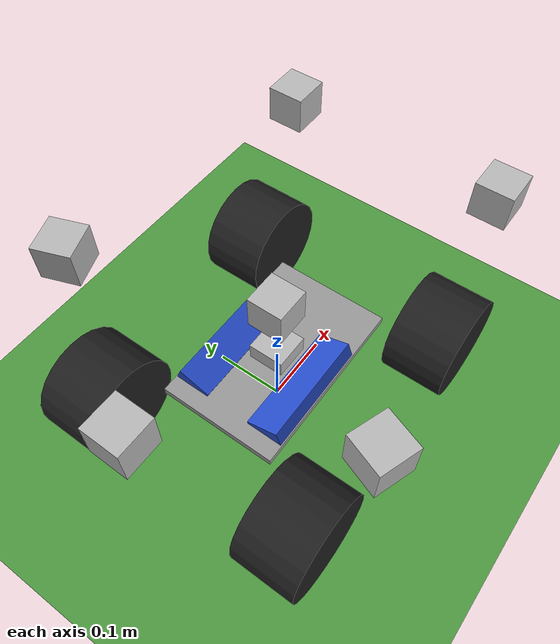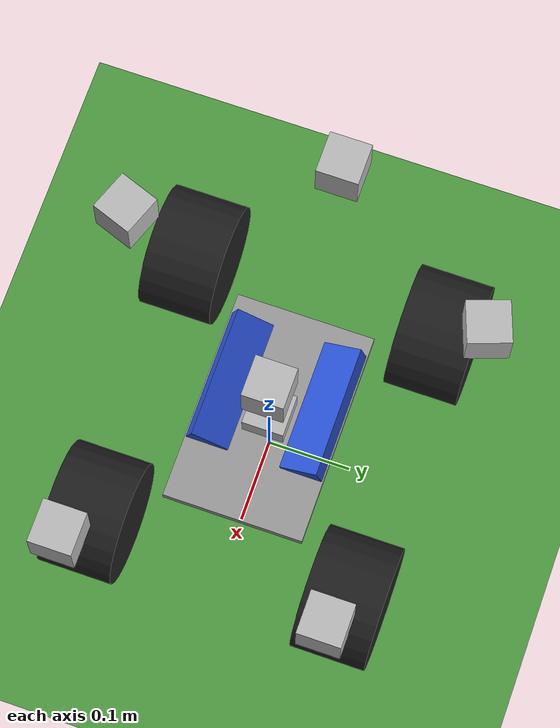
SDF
<sdf version="1.6">
 <world name="racecar_tunnel">
  <light name="sun" type="directional">
   <pose>0 0 10 0 -0 0</pose>
   <diffuse>0.8 0.8 0.8 1</diffuse>
   <specular>0.1 0.1 0.1 1</specular>
   <attenuation>
    <range>1000</range>
    <constant>0.9</constant>
    <linear>0.01</linear>
    <quadratic>0.001</quadratic>
   </attenuation>
   <direction>-0.5 0.5 -1</direction>
  </light>
  <model name="ground_plane">
   <static>1</static>
   <link name="link">
    <collision name="collision">
     <geometry><plane><normal>0 0 1</normal><size>150 150</size></plane></geometry>
     <surface><friction><ode><mu>100</mu><mu2>50</mu2></ode></friction></surface>
    </collision>
    <visual name="visual">
     <cast_shadows>0</cast_shadows>
     <geometry><plane><normal>0 0 1</normal><size>150 150</size></plane></geometry>
     <material>
      <script><uri>file://media/materials/scripts/gazebo.material</uri><name>Gazebo/Grass</name></script>
     </material>
    </visual>
   </link>
  </model>
  <gravity>0 0 -9.8</gravity>
  <magnetic_field>6e-06 2.3e-05 -4.2e-05</magnetic_field>
  <atmosphere type="adiabatic"/>
  <physics name="default_physics" default="0" type="ode">
   <max_step_size>0.001</max_step_size>
   <real_time_factor>1</real_time_factor>
   <real_time_update_rate>1000</real_time_update_rate>
  </physics>
  <scene><ambient>0.4 0.4 0.4 1</ambient><background>0.7 0.7 0.7 1</background><shadows>1</shadows></scene>
  <spherical_coordinates>
   <surface_model>EARTH_WGS84</surface_model>
   <latitude_deg>0</latitude_deg>
   <longitude_deg>0</longitude_deg>
   <elevation>0</elevation>
   <heading_deg>0</heading_deg>
  </spherical_coordinates>
  <model name="roguetwo">
   <link name="base_link">
    <inertial>
     <pose>-0.006291 -0 -0.000667 0 -0 0</pose>
     <mass>4</mass>
     <inertia>
      <ixx>0.0134338</ixx>
      <ixy>1.70525e-22</ixy>
      <ixz>2.8345e-05</ixz>
      <iyy>0.0215666</iyy>
      <iyz>1.80755e-23</iyz>
      <izz>0.0304621</izz>
     </inertia>
    </inertial>
    <collision name="base_link_fixed_joint_lump__chassis_collision">
     <pose>0 0 -0.005 0 -0 0</pose>
     <geometry><box><size>0.258 0.168 0.01</size></box></geometry>
    </collision>
    <collision name="base_link_fixed_joint_lump__left_battery_collision_1">
     <pose>-0.025 0.057319 0.00052 0.349066 -0 0</pose>
     <geometry><box><size>0.16 0.047 0.024</size></box></geometry>
    </collision>
    <collision name="base_link_fixed_joint_lump__right_battery_collision_2">
     <pose>-0.025 -0.057319 0.00052 -0.349066 0 0</pose>
     <geometry><box><size>0.16 0.047 0.024</size></box></geometry>
    </collision>
    <collision name="base_link_fixed_joint_lump__gps_collision_3">
     <pose>0 0 0.1 0 -0 0</pose>
     <geometry><box><size>0.05 0.05 0.05</size></box></geometry>
    </collision>
    <collision name="base_link_fixed_joint_lump__imu_collision_4">
     <geometry><box><size>0.05 0.05 0.05</size></box></geometry>
    </collision>
    <collision name="base_link_fixed_joint_lump__sonar1_link_collision_5">
     <pose>0.25 0.15 0.15 0 -0 0</pose>
     <geometry><box><size>0.01 0.01 0.01</size></box></geometry>
    </collision>
    <collision name="base_link_fixed_joint_lump__sonar2_link_collision_6">
     <pose>-0.12 0.21 0.15 0 -0 0.349</pose>
     <geometry><box><size>0.01 0.01 0.01</size></box></geometry>
    </collision>
    <collision name="base_link_fixed_joint_lump__sonar3_link_collision_7">
     <pose>-0.12 -0.21 0.15 0 0 -0.349</pose>
     <geometry><box><size>0.01 0.01 0.01</size></box></geometry>
    </collision>
    <collision name="base_link_fixed_joint_lump__sonar4_link_collision_8">
     <pose>-0.25 0 0.15 0 -0 3.14</pose>
     <geometry><box><size>0.01 0.01 0.01</size></box></geometry>
    </collision>
    <collision name="base_link_fixed_joint_lump__sonar5_link_collision_9">
     <pose>0.25 -0.15 0.15 0 -0 0</pose>
     <geometry><box><size>0.01 0.01 0.01</size></box></geometry>
    </collision>
    <visual name="base_link_visual">
     <geometry><box><size>0.01 0.01 0.01</size></box></geometry>
     <material>
      <script><name>Gazebo/Grey</name><uri>file://media/materials/scripts/gazebo.material</uri></script>
     </material>
    </visual>
    <visual name="base_link_fixed_joint_lump__chassis_visual_1">
     <pose>0 0 -0.005 0 -0 0</pose>
     <geometry><box><size>0.258 0.168 0.01</size></box></geometry>
     <material>
      <script><name>Gazebo/Grey</name><uri>file://media/materials/scripts/gazebo.material</uri></script>
     </material>
    </visual>
    <visual name="base_link_fixed_joint_lump__left_battery_visual_2">
     <pose>-0.025 0.057319 0.00052 0.349066 -0 0</pose>
     <geometry><box><size>0.16 0.047 0.024</size></box></geometry>
     <material>
      <script><name>Gazebo/Blue</name><uri>file://media/materials/scripts/gazebo.material</uri></script>
     </material>
    </visual>
    <visual name="base_link_fixed_joint_lump__right_battery_visual_3">
     <pose>-0.025 -0.057319 0.00052 -0.349066 0 0</pose>
     <geometry><box><size>0.16 0.047 0.024</size></box></geometry>
     <material>
      <script><name>Gazebo/Blue</name><uri>file://media/materials/scripts/gazebo.material</uri></script>
     </material>
    </visual>
    <visual name="base_link_fixed_joint_lump__gps_visual_4">
     <pose>0 0 0.1 0 -0 0</pose>
     <geometry><box><size>0.05 0.05 0.05</size></box></geometry>
    </visual>
    <visual name="base_link_fixed_joint_lump__imu_visual_5">
     <geometry><box><size>0.05 0.05 0.05</size></box></geometry>
    </visual>
    <visual name="base_link_fixed_joint_lump__sonar1_link_visual_6">
     <pose>0.25 0.15 0.175 0 -0 0</pose>
     <geometry><box><size>0.05 0.05 0.05</size></box></geometry>
     <material><script><uri>__default__</uri><name>__default__</name></script></material>
    </visual>
    <visual name="base_link_fixed_joint_lump__sonar2_link_visual_7">
     <pose>-0.12 0.21 0.175 0 -0 0.349</pose>
     <geometry><box><size>0.05 0.05 0.05</size></box></geometry>
     <material><script><uri>__default__</uri><name>__default__</name></script></material>
    </visual>
    <visual name="base_link_fixed_joint_lump__sonar3_link_visual_8">
     <pose>-0.12 -0.21 0.175 0 0 -0.349</pose>
     <geometry><box><size>0.05 0.05 0.05</size></box></geometry>
     <material><script><uri>__default__</uri><name>__default__</name></script></material>
    </visual>
    <visual name="base_link_fixed_joint_lump__sonar4_link_visual_9">
     <pose>-0.25 0 0.175 0 -0 3.14</pose>
     <geometry><box><size>0.05 0.05 0.05</size></box></geometry>
     <material><script><uri>__default__</uri><name>__default__</name></script></material>
    </visual>
    <visual name="base_link_fixed_joint_lump__sonar5_link_visual_10">
     <pose>0.25 -0.15 0.175 0 -0 0</pose>
     <geometry><box><size>0.05 0.05 0.05</size></box></geometry>
     <material><script><uri>__default__</uri><name>__default__</name></script></material>
    </visual>
    <sensor name="sonar1" type="ray">
     <always_on>1</always_on>
     <update_rate>10</update_rate>
     <visualize>1</visualize>
     <ray>
      <scan>
       <horizontal>
        <samples>1</samples>
        <resolution>1</resolution>
        <min_angle>-0</min_angle>
        <max_angle>0</max_angle>
       </horizontal>
       <vertical>
        <samples>1</samples>
        <resolution>1</resolution>
        <min_angle>-0</min_angle>
        <max_angle>0</max_angle>
       </vertical>
      </scan>
      <range><min>0.02</min><max>4.5</max><resolution>0.01</resolution></range>
     </ray>
     <plugin name="gazebo_ros_sonar1_controller" filename="libhector_gazebo_ros_sonar.so">
      <gaussianNoise>0.005</gaussianNoise>
      <topicName>/sonar_frontL_distance</topicName>
      <frameId>sonar1_link</frameId>
      <robotNamespace>/</robotNamespace>
     </plugin>
     <pose>0.25 0.15 0.15 0 -0 0</pose>
    </sensor>
    <sensor name="sonar2" type="ray">
     <always_on>1</always_on>
     <update_rate>10</update_rate>
     <visualize>1</visualize>
     <ray>
      <scan>
       <horizontal>
        <samples>1</samples>
        <resolution>1</resolution>
        <min_angle>-0</min_angle>
        <max_angle>0</max_angle>
       </horizontal>
       <vertical>
        <samples>1</samples>
        <resolution>1</resolution>
        <min_angle>-0</min_angle>
        <max_angle>0</max_angle>
       </vertical>
      </scan>
      <range><min>0.02</min><max>4.5</max><resolution>0.01</resolution></range>
     </ray>
     <plugin name="gazebo_ros_sonar2_controller" filename="libhector_gazebo_ros_sonar.so">
      <gaussianNoise>0.005</gaussianNoise>
      <topicName>/sonar_left_distance</topicName>
      <bodyName>sonar</bodyName>
      <serviceName>sonar_service</serviceName>
      <frameId>sonar2_link</frameId>
      <robotNamespace>/</robotNamespace>
     </plugin>
     <pose>-0.12 0.21 0.15 0 -0 0.349</pose>
    </sensor>
    <sensor name="sonar3" type="ray">
     <always_on>1</always_on>
     <update_rate>10</update_rate>
     <visualize>1</visualize>
     <ray>
      <scan>
       <horizontal>
        <samples>1</samples>
        <resolution>1</resolution>
        <min_angle>-0</min_angle>
        <max_angle>0</max_angle>
       </horizontal>
       <vertical>
        <samples>1</samples>
        <resolution>1</resolution>
        <min_angle>-0</min_angle>
        <max_angle>0</max_angle>
       </vertical>
      </scan>
      <range><min>0.02</min><max>4.5</max><resolution>0.01</resolution></range>
     </ray>
     <plugin name="gazebo_ros_sonar3_controller" filename="libhector_gazebo_ros_sonar.so">
      <gaussianNoise>0.005</gaussianNoise>
      <topicName>/sonar_right_distance</topicName>
      <bodyName>sonar</bodyName>
      <serviceName>sonar_service</serviceName>
      <frameId>sonar3_link</frameId>
      <robotNamespace>/</robotNamespace>
     </plugin>
     <pose>-0.12 -0.21 0.15 0 0 -0.349</pose>
    </sensor>
    <sensor name="sonar4" type="ray">
     <always_on>1</always_on>
     <update_rate>10</update_rate>
     <visualize>1</visualize>
     <ray>
      <scan>
       <horizontal>
        <samples>1</samples>
        <resolution>1</resolution>
        <min_angle>-0</min_angle>
        <max_angle>0</max_angle>
       </horizontal>
       <vertical>
        <samples>1</samples>
        <resolution>1</resolution>
        <min_angle>-0</min_angle>
        <max_angle>0</max_angle>
       </vertical>
      </scan>
      <range><min>0.02</min><max>4.5</max><resolution>0.01</resolution></range>
     </ray>
     <plugin name="gazebo_ros_sonar4_controller" filename="libhector_gazebo_ros_sonar.so">
      <gaussianNoise>0.005</gaussianNoise>
      <topicName>/sonar_back_distance</topicName>
      <bodyName>sonar</bodyName>
      <serviceName>sonar_service</serviceName>
      <frameId>sonar4_link</frameId>
      <robotNamespace>/</robotNamespace>
     </plugin>
     <pose>-0.25 0 0.15 0 -0 3.14</pose>
    </sensor>
    <sensor name="sonar5" type="ray">
     <always_on>1</always_on>
     <update_rate>10</update_rate>
     <visualize>1</visualize>
     <ray>
      <scan>
       <horizontal>
        <samples>1</samples>
        <resolution>1</resolution>
        <min_angle>-0</min_angle>
        <max_angle>0</max_angle>
       </horizontal>
       <vertical>
        <samples>1</samples>
        <resolution>1</resolution>
        <min_angle>-0</min_angle>
        <max_angle>0</max_angle>
       </vertical>
      </scan>
      <range><min>0.02</min><max>4.5</max><resolution>0.01</resolution></range>
     </ray>
     <plugin name="gazebo_ros_sonar5_controller" filename="libhector_gazebo_ros_sonar.so">
      <gaussianNoise>0.005</gaussianNoise>
      <topicName>/sonar_frontR_distance</topicName>
      <frameId>sonar5_link</frameId>
      <robotNamespace>/</robotNamespace>
     </plugin>
     <pose>0.25 -0.15 0.15 0 -0 0</pose>
    </sensor>
   </link>
   <link name="left_steering_link">
    <pose>0.1675 0.1525 -0.0235 0 -0 0</pose>
    <inertial>
     <mass>0.001</mass>
     <inertia><ixx>0.001</ixx><ixy>0</ixy><ixz>0</ixz><iyy>0.001</iyy><iyz>0</iyz><izz>0.001</izz></inertia>
    </inertial>
   </link>
   <joint name="left_front_shock" type="prismatic">
    <child>left_steering_link</child>
    <parent>base_link</parent>
    <axis>
     <xyz>0 0 -1</xyz>
     <limit><lower>-0.042</lower><upper>0.042</upper><effort>12.5106</effort><velocity>1000</velocity></limit>
     <dynamics><spring_reference>0</spring_reference><spring_stiffness>0</spring_stiffness></dynamics>
     <use_parent_model_frame>1</use_parent_model_frame>
    </axis>
   </joint>
   <link name="left_front_axle_carrier">
    <pose>0.1675 0.1525 -0.0235 0 -0 0</pose>
    <inertial>
     <mass>0.001</mass>
     <inertia><ixx>0.001</ixx><ixy>0</ixy><ixz>0</ixz><iyy>0.001</iyy><iyz>0</iyz><izz>0.001</izz></inertia>
    </inertial>
   </link>
   <joint name="left_steering_joint" type="revolute">
    <child>left_front_axle_carrier</child>
    <parent>left_steering_link</parent>
    <axis>
     <xyz>0 0 1</xyz>
     <limit>
      <lower>-0.785398</lower>
      <upper>0.785398</upper>
      <effort>0.5649</effort>
      <velocity>4.553</velocity>
     </limit>
     <dynamics><spring_reference>0</spring_reference><spring_stiffness>0</spring_stiffness></dynamics>
     <use_parent_model_frame>1</use_parent_model_frame>
    </axis>
   </joint>
   <link name="left_front_wheel">
    <pose>0.1675 0.1525 -0.0235 1.5708 -0 0</pose>
    <inertial>
     <mass>0.29</mass>
     <inertia>
      <ixx>0.000746466</ixx>
      <ixy>0</ixy>
      <ixz>0</ixz>
      <iyy>0.000746466</iyy>
      <iyz>0</iyz>
      <izz>0.00111094</izz>
     </inertia>
    </inertial>
    <collision name="left_front_wheel_collision">
     <geometry><cylinder><length>0.0889</length><radius>0.073025</radius></cylinder></geometry>
    </collision>
    <visual name="left_front_wheel_visual">
     <geometry><cylinder><length>0.0889</length><radius>0.073025</radius></cylinder></geometry>
     <material>
      <script><name>Gazebo/Black</name><uri>file://media/materials/scripts/gazebo.material</uri></script>
     </material>
    </visual>
   </link>
   <joint name="left_front_axle" type="revolute">
    <child>left_front_wheel</child>
    <parent>left_front_axle_carrier</parent>
    <axis>
     <xyz>0 1 0</xyz>
     <limit><lower>-1e+16</lower><upper>1e+16</upper></limit>
     <dynamics><spring_reference>0</spring_reference><spring_stiffness>0</spring_stiffness></dynamics>
     <use_parent_model_frame>1</use_parent_model_frame>
    </axis>
   </joint>
   <link name="left_rear_axle_carrier">
    <pose>-0.1675 0.1525 -0.0235 0 -0 0</pose>
    <inertial>
     <mass>0.001</mass>
     <inertia><ixx>0.001</ixx><ixy>0</ixy><ixz>0</ixz><iyy>0.001</iyy><iyz>0</iyz><izz>0.001</izz></inertia>
    </inertial>
   </link>
   <joint name="left_rear_shock" type="prismatic">
    <child>left_rear_axle_carrier</child>
    <parent>base_link</parent>
    <axis>
     <xyz>0 0 -1</xyz>
     <limit><lower>-0.042</lower><upper>0.042</upper><effort>12.5106</effort><velocity>1000</velocity></limit>
     <dynamics><spring_reference>0</spring_reference><spring_stiffness>0</spring_stiffness></dynamics>
     <use_parent_model_frame>1</use_parent_model_frame>
    </axis>
   </joint>
   <link name="left_rear_wheel">
    <pose>-0.1675 0.1525 -0.0235 1.5708 -0 0</pose>
    <inertial>
     <mass>0.29</mass>
     <inertia>
      <ixx>0.000746466</ixx>
      <ixy>0</ixy>
      <ixz>0</ixz>
      <iyy>0.000746466</iyy>
      <iyz>0</iyz>
      <izz>0.00111094</izz>
     </inertia>
    </inertial>
    <collision name="left_rear_wheel_collision">
     <geometry><cylinder><length>0.0889</length><radius>0.073025</radius></cylinder></geometry>
    </collision>
    <visual name="left_rear_wheel_visual">
     <geometry><cylinder><length>0.0889</length><radius>0.073025</radius></cylinder></geometry>
     <material>
      <script><name>Gazebo/Black</name><uri>file://media/materials/scripts/gazebo.material</uri></script>
     </material>
    </visual>
   </link>
   <joint name="left_rear_axle" type="revolute">
    <child>left_rear_wheel</child>
    <parent>left_rear_axle_carrier</parent>
    <axis>
     <xyz>0 1 0</xyz>
     <limit><lower>-1e+16</lower><upper>1e+16</upper></limit>
     <dynamics><spring_reference>0</spring_reference><spring_stiffness>0</spring_stiffness></dynamics>
     <use_parent_model_frame>1</use_parent_model_frame>
    </axis>
   </joint>
   <link name="right_steering_link">
    <pose>0.1675 -0.1525 -0.0235 0 -0 0</pose>
    <inertial>
     <mass>0.001</mass>
     <inertia><ixx>0.001</ixx><ixy>0</ixy><ixz>0</ixz><iyy>0.001</iyy><iyz>0</iyz><izz>0.001</izz></inertia>
    </inertial>
   </link>
   <joint name="right_front_shock" type="prismatic">
    <child>right_steering_link</child>
    <parent>base_link</parent>
    <axis>
     <xyz>0 0 -1</xyz>
     <limit><lower>-0.042</lower><upper>0.042</upper><effort>12.5106</effort><velocity>1000</velocity></limit>
     <dynamics><spring_reference>0</spring_reference><spring_stiffness>0</spring_stiffness></dynamics>
     <use_parent_model_frame>1</use_parent_model_frame>
    </axis>
   </joint>
   <link name="right_front_axle_carrier">
    <pose>0.1675 -0.1525 -0.0235 0 -0 0</pose>
    <inertial>
     <mass>0.001</mass>
     <inertia><ixx>0.001</ixx><ixy>0</ixy><ixz>0</ixz><iyy>0.001</iyy><iyz>0</iyz><izz>0.001</izz></inertia>
    </inertial>
   </link>
   <joint name="right_steering_joint" type="revolute">
    <child>right_front_axle_carrier</child>
    <parent>right_steering_link</parent>
    <axis>
     <xyz>0 0 1</xyz>
     <limit>
      <lower>-0.785398</lower>
      <upper>0.785398</upper>
      <effort>0.5649</effort>
      <velocity>4.553</velocity>
     </limit>
     <dynamics><spring_reference>0</spring_reference><spring_stiffness>0</spring_stiffness></dynamics>
     <use_parent_model_frame>1</use_parent_model_frame>
    </axis>
   </joint>
   <link name="right_front_wheel">
    <pose>0.1675 -0.1525 -0.0235 1.5708 -0 0</pose>
    <inertial>
     <mass>0.29</mass>
     <inertia>
      <ixx>0.000746466</ixx>
      <ixy>0</ixy>
      <ixz>0</ixz>
      <iyy>0.000746466</iyy>
      <iyz>0</iyz>
      <izz>0.00111094</izz>
     </inertia>
    </inertial>
    <collision name="right_front_wheel_collision">
     <geometry><cylinder><length>0.0889</length><radius>0.073025</radius></cylinder></geometry>
    </collision>
    <visual name="right_front_wheel_visual">
     <geometry><cylinder><length>0.0889</length><radius>0.073025</radius></cylinder></geometry>
     <material>
      <script><name>Gazebo/Black</name><uri>file://media/materials/scripts/gazebo.material</uri></script>
     </material>
    </visual>
   </link>
   <joint name="right_front_axle" type="revolute">
    <child>right_front_wheel</child>
    <parent>right_front_axle_carrier</parent>
    <axis>
     <xyz>0 1 0</xyz>
     <limit><lower>-1e+16</lower><upper>1e+16</upper></limit>
     <dynamics><spring_reference>0</spring_reference><spring_stiffness>0</spring_stiffness></dynamics>
     <use_parent_model_frame>1</use_parent_model_frame>
    </axis>
   </joint>
   <link name="right_rear_axle_carrier">
    <pose>-0.1675 -0.1525 -0.0235 0 -0 0</pose>
    <inertial>
     <mass>0.001</mass>
     <inertia><ixx>0.001</ixx><ixy>0</ixy><ixz>0</ixz><iyy>0.001</iyy><iyz>0</iyz><izz>0.001</izz></inertia>
    </inertial>
   </link>
   <joint name="right_rear_shock" type="prismatic">
    <child>right_rear_axle_carrier</child>
    <parent>base_link</parent>
    <axis>
     <xyz>0 0 -1</xyz>
     <limit><lower>-0.042</lower><upper>0.042</upper><effort>12.5106</effort><velocity>1000</velocity></limit>
     <dynamics><spring_reference>0</spring_reference><spring_stiffness>0</spring_stiffness></dynamics>
     <use_parent_model_frame>1</use_parent_model_frame>
    </axis>
   </joint>
   <link name="right_rear_wheel">
    <pose>-0.1675 -0.1525 -0.0235 1.5708 -0 0</pose>
    <inertial>
     <mass>0.29</mass>
     <inertia>
      <ixx>0.000746466</ixx>
      <ixy>0</ixy>
      <ixz>0</ixz>
      <iyy>0.000746466</iyy>
      <iyz>0</iyz>
      <izz>0.00111094</izz>
     </inertia>
    </inertial>
    <collision name="right_rear_wheel_collision">
     <geometry><cylinder><length>0.0889</length><radius>0.073025</radius></cylinder></geometry>
    </collision>
    <visual name="right_rear_wheel_visual">
     <geometry><cylinder><length>0.0889</length><radius>0.073025</radius></cylinder></geometry>
     <material>
      <script><name>Gazebo/Black</name><uri>file://media/materials/scripts/gazebo.material</uri></script>
     </material>
    </visual>
   </link>
   <joint name="right_rear_axle" type="revolute">
    <child>right_rear_wheel</child>
    <parent>right_rear_axle_carrier</parent>
    <axis>
     <xyz>0 1 0</xyz>
     <limit><lower>-1e+16</lower><upper>1e+16</upper></limit>
     <dynamics><spring_reference>0</spring_reference><spring_stiffness>0</spring_stiffness></dynamics>
     <use_parent_model_frame>1</use_parent_model_frame>
    </axis>
   </joint>
   <plugin name="gazebo_ros_gps" filename="libhector_gazebo_ros_gps.so">
    <updateRate>4.0</updateRate>
    <frameId>gps</frameId>
    <topicName>/gps/fix</topicName>
    <velocityTopicName>/gps/fix_velocity</velocityTopicName>
    <referenceLatitude>-30.06022459407145675</referenceLatitude>
    <referenceLongitude>-51.173913575780311191</referenceLongitude>
    <referenceHeading>90</referenceHeading>
    <referenceAltitude>10</referenceAltitude>
    <offset>0 0 0</offset>
    <drift>0.001 0.001 0.001</drift>
    <gaussianNoise>0.5 0.5 0.5</gaussianNoise>
    <velocityDrift>0.001 0.001 0.001</velocityDrift>
    <velocityGaussianNoise>0.5 0.5 0.5</velocityGaussianNoise>
    <robotNamespace>/</robotNamespace>
    <bodyName>base_link</bodyName>
    <xyzOffset>0 0 -0.1</xyzOffset>
    <rpyOffset>0 -0 0</rpyOffset>
   </plugin>
   <plugin name="imu_plugin" filename="libgazebo_ros_imu.so">
    <alwaysOn>true</alwaysOn>
    <topicName>imu/data</topicName>
    <serviceName>imu_service</serviceName>
    <gaussianNoise>0.05</gaussianNoise>
    <updateRate>20.0</updateRate>
    <robotNamespace>/</robotNamespace>
    <bodyName>base_link</bodyName>
    <xyzOffset>0 0 0</xyzOffset>
    <rpyOffset>0 -0 0</rpyOffset>
   </plugin>
   <static>0</static>
   <plugin name="gazebo_ros_control" filename="libgazebo_ros_control.so">
    <robotNamespace>/</robotNamespace>
   </plugin>
   <pose>-0.000475 5.9e-05 0.105624 -3e-05 -0.00765 -0.001325</pose>
  </model>
 </world>
</sdf>
